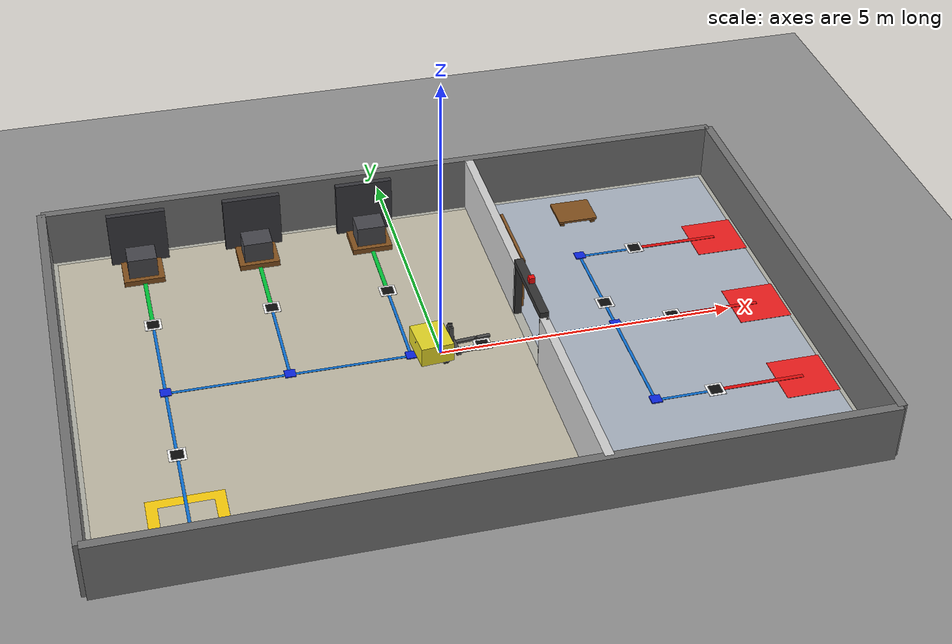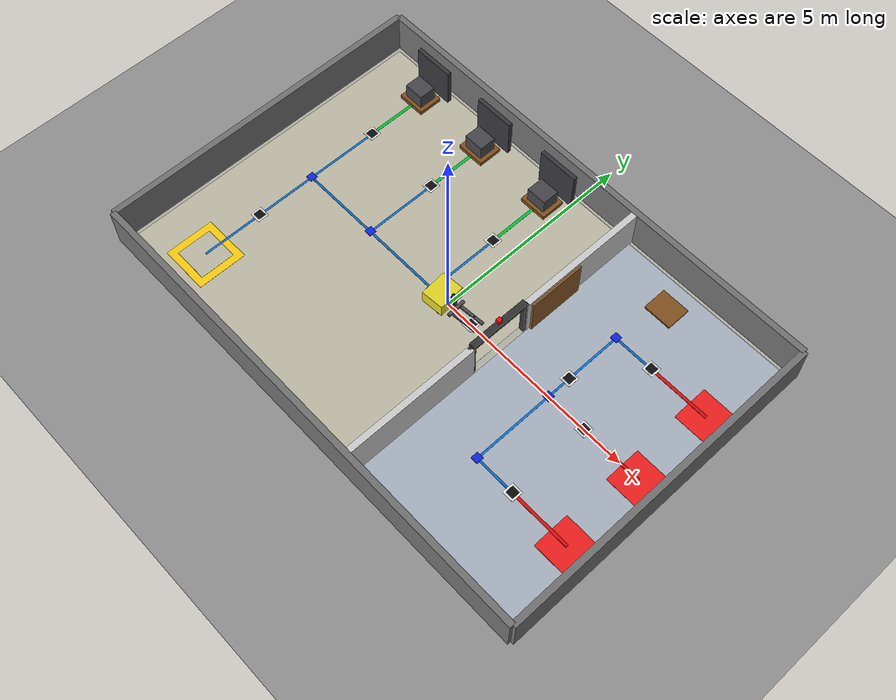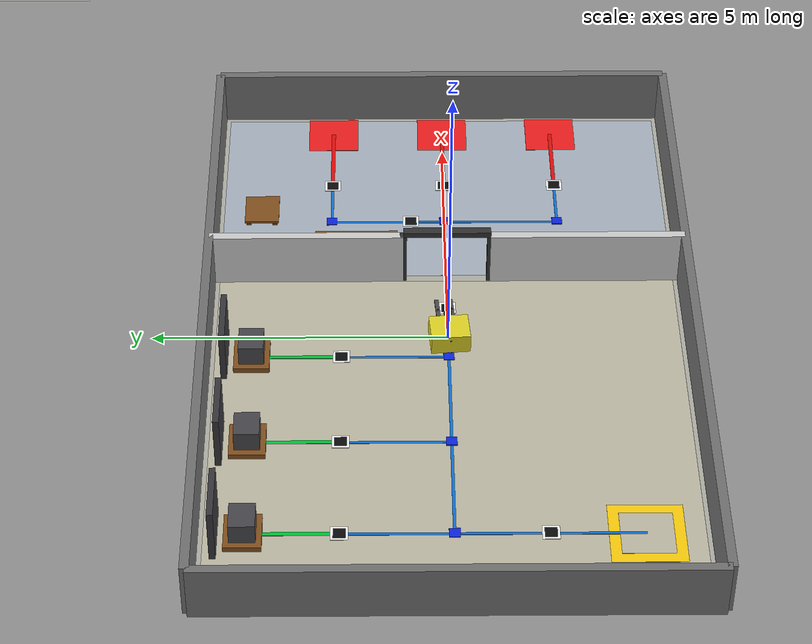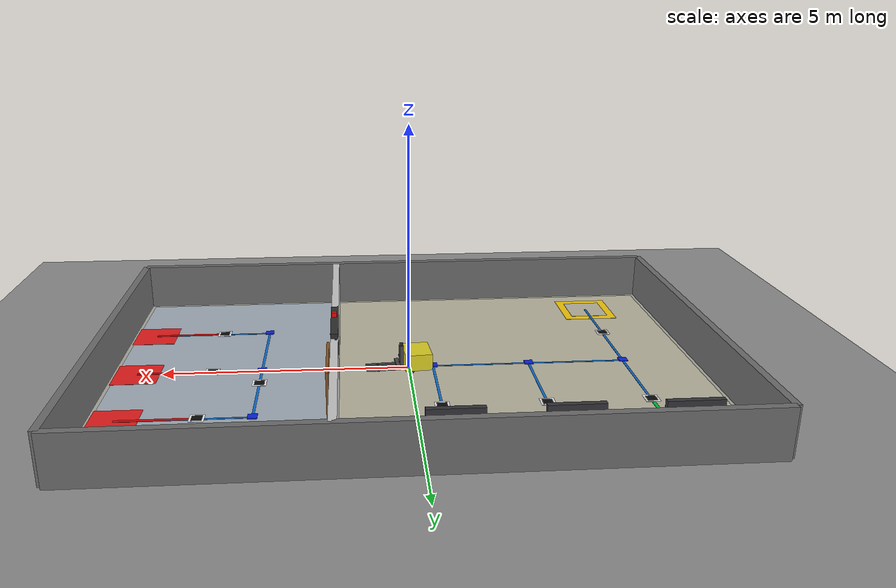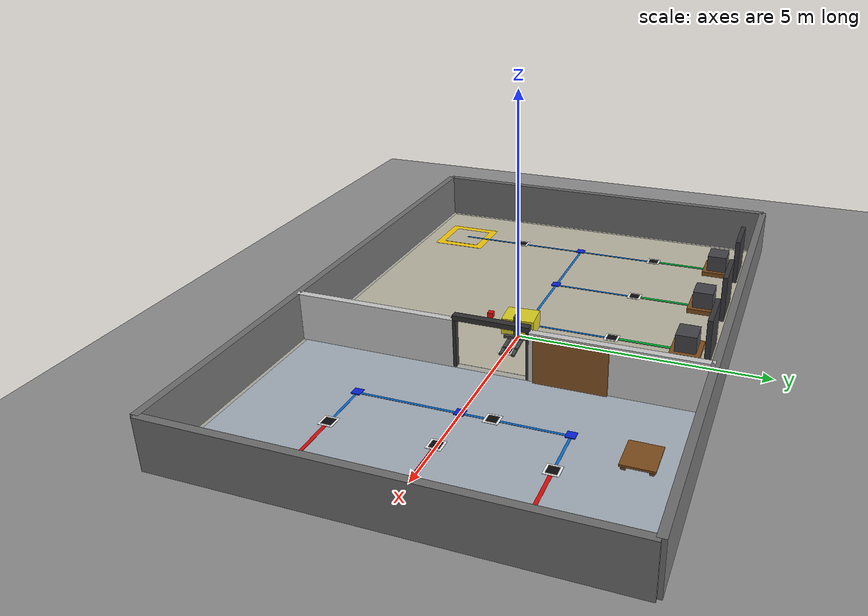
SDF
<sdf version="1.7">
 <world name="teknofest_arena">
  <plugin name="gazebo_ros_properties" filename="libgazebo_ros_properties.so">
   <ros><namespace>/gazebo</namespace></ros>
  </plugin>
  <gravity>0 0 -9.8</gravity>
  <physics name="default_physics" type="ode">
   <max_step_size>0.001</max_step_size>
   <real_time_factor>1</real_time_factor>
   <real_time_update_rate>1000</real_time_update_rate>
  </physics>
  <scene><ambient>0.55 0.55 0.55 1</ambient><background>0.78 0.8 0.82 1</background><shadows>1</shadows></scene>
  <light name="sun" type="directional">
   <pose>0 0 10 0 -0 0</pose>
   <diffuse>0.85 0.85 0.85 1</diffuse>
   <specular>0.2 0.2 0.2 1</specular>
   <attenuation>
    <range>1000</range>
    <constant>0.9</constant>
    <linear>0.01</linear>
    <quadratic>0.001</quadratic>
   </attenuation>
   <direction>-0.45 0.15 -0.88</direction>
   <spot><inner_angle>0</inner_angle><outer_angle>0</outer_angle><falloff>0</falloff></spot>
  </light>
  <light name="overhead_warehouse" type="point">
   <pose>-2.5 0 6 0 -0 0</pose>
   <diffuse>0.65 0.65 0.65 1</diffuse>
   <specular>0.1 0.1 0.1 1</specular>
   <attenuation>
    <range>20</range>
    <constant>0.5</constant>
    <linear>0.01</linear>
    <quadratic>0.001</quadratic>
   </attenuation>
   <direction>0 0 -1</direction>
   <spot><inner_angle>0</inner_angle><outer_angle>0</outer_angle><falloff>0</falloff></spot>
  </light>
  <light name="overhead_production" type="point">
   <pose>4 0 6 0 -0 0</pose>
   <diffuse>0.65 0.65 0.65 1</diffuse>
   <specular>0.1 0.1 0.1 1</specular>
   <attenuation>
    <range>20</range>
    <constant>0.5</constant>
    <linear>0.01</linear>
    <quadratic>0.001</quadratic>
   </attenuation>
   <direction>0 0 -1</direction>
   <spot><inner_angle>0</inner_angle><outer_angle>0</outer_angle><falloff>0</falloff></spot>
  </light>
  <model name="ground_plane">
   <static>1</static>
   <link name="link">
    <collision name="collision">
     <geometry><plane><normal>0 0 1</normal><size>100 100</size></plane></geometry>
     <surface><friction><ode><mu>100</mu><mu2>100</mu2></ode></friction></surface>
    </collision>
    <visual name="visual">
     <cast_shadows>0</cast_shadows>
     <geometry><plane><normal>0 0 1</normal><size>100 100</size></plane></geometry>
     <material><ambient>0.58 0.58 0.58 1</ambient><diffuse>0.58 0.58 0.58 1</diffuse></material>
    </visual>
   </link>
  </model>
  <model name="teknofest_arena_static">
   <static>1</static>
   <link name="arena_floor">
    <pose>0 0 0.005 0 -0 0</pose>
    <visual name="visual">
     <geometry><box><size>12 8 0.01</size></box></geometry>
     <material><ambient>0.7 0.7 0.66 1</ambient><diffuse>0.7 0.7 0.66 1</diffuse></material>
    </visual>
   </link>
   <link name="zone_warehouse">
    <pose>-2.25 0 0.009 0 -0 0</pose>
    <visual name="visual">
     <geometry><box><size>7.35 7.85 0.004</size></box></geometry>
     <material><ambient>0.76 0.74 0.66 1</ambient><diffuse>0.76 0.74 0.66 1</diffuse></material>
    </visual>
   </link>
   <link name="zone_production">
    <pose>3.75 0 0.009 0 -0 0</pose>
    <visual name="visual">
     <geometry><box><size>4.35 7.85 0.004</size></box></geometry>
     <material><ambient>0.67 0.71 0.76 1</ambient><diffuse>0.67 0.71 0.76 1</diffuse></material>
    </visual>
   </link>
   <link name="wall_north">
    <pose>0 4.075 0.5 0 -0 0</pose>
    <collision name="col"><geometry><box><size>12.15 0.15 1</size></box></geometry></collision>
    <visual name="vis">
     <geometry><box><size>12.15 0.15 1</size></box></geometry>
     <material><ambient>0.45 0.45 0.45 1</ambient><diffuse>0.45 0.45 0.45 1</diffuse></material>
    </visual>
   </link>
   <link name="wall_south">
    <pose>0 -4.075 0.5 0 -0 0</pose>
    <collision name="col"><geometry><box><size>12.15 0.15 1</size></box></geometry></collision>
    <visual name="vis">
     <geometry><box><size>12.15 0.15 1</size></box></geometry>
     <material><ambient>0.45 0.45 0.45 1</ambient><diffuse>0.45 0.45 0.45 1</diffuse></material>
    </visual>
   </link>
   <link name="wall_west">
    <pose>-6.075 0 0.5 0 -0 0</pose>
    <collision name="col"><geometry><box><size>0.15 8.15 1</size></box></geometry></collision>
    <visual name="vis">
     <geometry><box><size>0.15 8.15 1</size></box></geometry>
     <material><ambient>0.45 0.45 0.45 1</ambient><diffuse>0.45 0.45 0.45 1</diffuse></material>
    </visual>
   </link>
   <link name="wall_east">
    <pose>6.075 0 0.5 0 -0 0</pose>
    <collision name="col"><geometry><box><size>0.15 8.15 1</size></box></geometry></collision>
    <visual name="vis">
     <geometry><box><size>0.15 8.15 1</size></box></geometry>
     <material><ambient>0.45 0.45 0.45 1</ambient><diffuse>0.45 0.45 0.45 1</diffuse></material>
    </visual>
   </link>
   <link name="partition_upper">
    <pose>1.5 2.41 0.5 0 -0 0</pose>
    <collision name="col"><geometry><box><size>0.15 3.325 1</size></box></geometry></collision>
    <visual name="vis">
     <geometry><box><size>0.15 3.325 1</size></box></geometry>
     <material><ambient>0.82 0.82 0.82 1</ambient><diffuse>0.82 0.82 0.82 1</diffuse></material>
    </visual>
   </link>
   <link name="partition_lower">
    <pose>1.5 -2.41 0.5 0 -0 0</pose>
    <collision name="col"><geometry><box><size>0.15 3.325 1</size></box></geometry></collision>
    <visual name="vis">
     <geometry><box><size>0.15 3.325 1</size></box></geometry>
     <material><ambient>0.82 0.82 0.82 1</ambient><diffuse>0.82 0.82 0.82 1</diffuse></material>
    </visual>
   </link>
   <link name="gate_header">
    <pose>1.5 0 1.05 0 -0 0</pose>
    <collision name="col"><geometry><box><size>0.15 1.5 0.1</size></box></geometry></collision>
    <visual name="vis">
     <geometry><box><size>0.15 1.5 0.1</size></box></geometry>
     <material><ambient>0.2 0.2 0.2 1</ambient><diffuse>0.2 0.2 0.2 1</diffuse></material>
    </visual>
   </link>
   <link name="gate_post_north">
    <pose>1.5 0.75 0.5 0 -0 0</pose>
    <collision name="col"><geometry><box><size>0.12 0.12 1</size></box></geometry></collision>
    <visual name="vis">
     <geometry><box><size>0.12 0.12 1</size></box></geometry>
     <material><ambient>0.2 0.2 0.2 1</ambient><diffuse>0.2 0.2 0.2 1</diffuse></material>
    </visual>
   </link>
   <link name="gate_post_south">
    <pose>1.5 -0.75 0.5 0 -0 0</pose>
    <collision name="col"><geometry><box><size>0.12 0.12 1</size></box></geometry></collision>
    <visual name="vis">
     <geometry><box><size>0.12 0.12 1</size></box></geometry>
     <material><ambient>0.2 0.2 0.2 1</ambient><diffuse>0.2 0.2 0.2 1</diffuse></material>
    </visual>
   </link>
   <link name="gate_plc_light">
    <pose>1.5 0 1.22 0 -0 0</pose>
    <visual name="vis">
     <geometry><box><size>0.1 0.1 0.1</size></box></geometry>
     <material><ambient>0.95 0.05 0.05 1</ambient><diffuse>0.95 0.05 0.05 1</diffuse></material>
    </visual>
   </link>
   <link name="gate_door_panel">
    <pose>1.62 1.55 0.5 0 -0 0</pose>
    <collision name="col"><geometry><box><size>0.05 1.4 0.95</size></box></geometry></collision>
    <visual name="vis">
     <geometry><box><size>0.05 1.4 0.95</size></box></geometry>
     <material><ambient>0.55 0.35 0.15 1</ambient><diffuse>0.55 0.35 0.15 1</diffuse></material>
    </visual>
   </link>
   <link name="start_area_outer">
    <pose>-4.5 -3 0.012 0 -0 0</pose>
    <visual name="vis">
     <geometry><box><size>1.2 1.2 0.006</size></box></geometry>
     <material><ambient>1 0.82 0.05 1</ambient><diffuse>1 0.82 0.05 1</diffuse></material>
    </visual>
   </link>
   <link name="start_area_inner">
    <pose>-4.5 -3 0.016 0 -0 0</pose>
    <visual name="vis">
     <geometry><box><size>0.85 0.85 0.006</size></box></geometry>
     <material><ambient>0.76 0.74 0.66 1</ambient><diffuse>0.76 0.74 0.66 1</diffuse></material>
    </visual>
   </link>
   <link name="route_start_to_d1">
    <pose>-4.5 -1.5 0.02 0 -0 1.5708</pose>
    <visual name="vis">
     <geometry><box><size>3 0.05 0.006</size></box></geometry>
     <material><ambient>0.05 0.45 0.85 1</ambient><diffuse>0.05 0.45 0.85 1</diffuse></material>
    </visual>
   </link>
   <link name="route_d1_d2">
    <pose>-3.5 0 0.02 0 -0 0</pose>
    <visual name="vis">
     <geometry><box><size>2 0.05 0.006</size></box></geometry>
     <material><ambient>0.05 0.45 0.85 1</ambient><diffuse>0.05 0.45 0.85 1</diffuse></material>
    </visual>
   </link>
   <link name="route_d2_d3">
    <pose>-1.5 0 0.02 0 -0 0</pose>
    <visual name="vis">
     <geometry><box><size>2 0.05 0.006</size></box></geometry>
     <material><ambient>0.05 0.45 0.85 1</ambient><diffuse>0.05 0.45 0.85 1</diffuse></material>
    </visual>
   </link>
   <link name="route_d3_to_gate">
    <pose>0.5 0 0.02 0 -0 0</pose>
    <visual name="vis">
     <geometry><box><size>2 0.05 0.006</size></box></geometry>
     <material><ambient>0.05 0.45 0.85 1</ambient><diffuse>0.05 0.45 0.85 1</diffuse></material>
    </visual>
   </link>
   <link name="route_gate_to_d4">
    <pose>2.25 0 0.02 0 -0 0</pose>
    <visual name="vis">
     <geometry><box><size>1.5 0.05 0.006</size></box></geometry>
     <material><ambient>0.05 0.45 0.85 1</ambient><diffuse>0.05 0.45 0.85 1</diffuse></material>
    </visual>
   </link>
   <link name="route_d4_to_d5">
    <pose>3 1 0.02 0 -0 1.5708</pose>
    <visual name="vis">
     <geometry><box><size>2 0.05 0.006</size></box></geometry>
     <material><ambient>0.05 0.45 0.85 1</ambient><diffuse>0.05 0.45 0.85 1</diffuse></material>
    </visual>
   </link>
   <link name="route_d4_to_d6">
    <pose>3 -1 0.02 0 -0 1.5708</pose>
    <visual name="vis">
     <geometry><box><size>2 0.05 0.006</size></box></geometry>
     <material><ambient>0.05 0.45 0.85 1</ambient><diffuse>0.05 0.45 0.85 1</diffuse></material>
    </visual>
   </link>
   <link name="route_d5_to_b1">
    <pose>4.25 2 0.02 0 -0 0</pose>
    <visual name="vis">
     <geometry><box><size>2.5 0.05 0.006</size></box></geometry>
     <material><ambient>0.05 0.45 0.85 1</ambient><diffuse>0.05 0.45 0.85 1</diffuse></material>
    </visual>
   </link>
   <link name="route_d4_to_b2">
    <pose>4.25 0 0.02 0 -0 0</pose>
    <visual name="vis">
     <geometry><box><size>2.5 0.05 0.006</size></box></geometry>
     <material><ambient>0.05 0.45 0.85 1</ambient><diffuse>0.05 0.45 0.85 1</diffuse></material>
    </visual>
   </link>
   <link name="route_d6_to_b3">
    <pose>4.25 -2 0.02 0 -0 0</pose>
    <visual name="vis">
     <geometry><box><size>2.5 0.05 0.006</size></box></geometry>
     <material><ambient>0.05 0.45 0.85 1</ambient><diffuse>0.05 0.45 0.85 1</diffuse></material>
    </visual>
   </link>
   <link name="route_d1_to_a1">
    <pose>-4.5 1.65 0.02 0 -0 1.5708</pose>
    <visual name="vis">
     <geometry><box><size>3.3 0.05 0.006</size></box></geometry>
     <material><ambient>0.05 0.45 0.85 1</ambient><diffuse>0.05 0.45 0.85 1</diffuse></material>
    </visual>
   </link>
   <link name="route_d2_to_a2">
    <pose>-2.5 1.65 0.02 0 -0 1.5708</pose>
    <visual name="vis">
     <geometry><box><size>3.3 0.05 0.006</size></box></geometry>
     <material><ambient>0.05 0.45 0.85 1</ambient><diffuse>0.05 0.45 0.85 1</diffuse></material>
    </visual>
   </link>
   <link name="route_d3_to_a3">
    <pose>-0.5 1.65 0.02 0 -0 1.5708</pose>
    <visual name="vis">
     <geometry><box><size>3.3 0.05 0.006</size></box></geometry>
     <material><ambient>0.05 0.45 0.85 1</ambient><diffuse>0.05 0.45 0.85 1</diffuse></material>
    </visual>
   </link>
   <link name="line_follow_a1_green">
    <pose>-4.5 2.55 0.03 0 -0 1.5708</pose>
    <visual name="vis">
     <geometry><box><size>1.5 0.07 0.008</size></box></geometry>
     <material><ambient>0 0.78 0.22 1</ambient><diffuse>0 0.78 0.22 1</diffuse></material>
    </visual>
   </link>
   <link name="line_follow_a2_green">
    <pose>-2.5 2.55 0.03 0 -0 1.5708</pose>
    <visual name="vis">
     <geometry><box><size>1.5 0.07 0.008</size></box></geometry>
     <material><ambient>0 0.78 0.22 1</ambient><diffuse>0 0.78 0.22 1</diffuse></material>
    </visual>
   </link>
   <link name="line_follow_a3_green">
    <pose>-0.5 2.55 0.03 0 -0 1.5708</pose>
    <visual name="vis">
     <geometry><box><size>1.5 0.07 0.008</size></box></geometry>
     <material><ambient>0 0.78 0.22 1</ambient><diffuse>0 0.78 0.22 1</diffuse></material>
    </visual>
   </link>
   <link name="line_follow_b1_red">
    <pose>4.75 2 0.03 0 -0 0</pose>
    <visual name="vis">
     <geometry><box><size>1.5 0.07 0.008</size></box></geometry>
     <material><ambient>0.9 0.05 0.05 1</ambient><diffuse>0.9 0.05 0.05 1</diffuse></material>
    </visual>
   </link>
   <link name="line_follow_b2_red">
    <pose>4.75 0 0.03 0 -0 0</pose>
    <visual name="vis">
     <geometry><box><size>1.5 0.07 0.008</size></box></geometry>
     <material><ambient>0.9 0.05 0.05 1</ambient><diffuse>0.9 0.05 0.05 1</diffuse></material>
    </visual>
   </link>
   <link name="line_follow_b3_red">
    <pose>4.75 -2 0.03 0 -0 0</pose>
    <visual name="vis">
     <geometry><box><size>1.5 0.07 0.008</size></box></geometry>
     <material><ambient>0.9 0.05 0.05 1</ambient><diffuse>0.9 0.05 0.05 1</diffuse></material>
    </visual>
   </link>
   <link name="B1_delivery_zone">
    <pose>5.5 2 0.018 0 -0 0</pose>
    <visual name="vis">
     <geometry><box><size>0.9 0.9 0.006</size></box></geometry>
     <material><ambient>0.95 0.12 0.12 1</ambient><diffuse>0.95 0.12 0.12 1</diffuse></material>
    </visual>
   </link>
   <link name="B2_delivery_zone">
    <pose>5.5 0 0.018 0 -0 0</pose>
    <visual name="vis">
     <geometry><box><size>0.9 0.9 0.006</size></box></geometry>
     <material><ambient>0.95 0.12 0.12 1</ambient><diffuse>0.95 0.12 0.12 1</diffuse></material>
    </visual>
   </link>
   <link name="B3_delivery_zone">
    <pose>5.5 -2 0.018 0 -0 0</pose>
    <visual name="vis">
     <geometry><box><size>0.9 0.9 0.006</size></box></geometry>
     <material><ambient>0.95 0.12 0.12 1</ambient><diffuse>0.95 0.12 0.12 1</diffuse></material>
    </visual>
   </link>
   <link name="D1_node">
    <pose>-4.5 0 0.04 0 -0 0</pose>
    <visual name="vis">
     <geometry><box><size>0.18 0.18 0.02</size></box></geometry>
     <material><ambient>0.05 0.15 0.9 1</ambient><diffuse>0.05 0.15 0.9 1</diffuse></material>
    </visual>
   </link>
   <link name="D2_node">
    <pose>-2.5 0 0.04 0 -0 0</pose>
    <visual name="vis">
     <geometry><box><size>0.18 0.18 0.02</size></box></geometry>
     <material><ambient>0.05 0.15 0.9 1</ambient><diffuse>0.05 0.15 0.9 1</diffuse></material>
    </visual>
   </link>
   <link name="D3_node">
    <pose>-0.5 0 0.04 0 -0 0</pose>
    <visual name="vis">
     <geometry><box><size>0.18 0.18 0.02</size></box></geometry>
     <material><ambient>0.05 0.15 0.9 1</ambient><diffuse>0.05 0.15 0.9 1</diffuse></material>
    </visual>
   </link>
   <link name="D4_node">
    <pose>3 0 0.04 0 -0 0</pose>
    <visual name="vis">
     <geometry><box><size>0.18 0.18 0.02</size></box></geometry>
     <material><ambient>0.05 0.15 0.9 1</ambient><diffuse>0.05 0.15 0.9 1</diffuse></material>
    </visual>
   </link>
   <link name="D5_node">
    <pose>3 2 0.04 0 -0 0</pose>
    <visual name="vis">
     <geometry><box><size>0.18 0.18 0.02</size></box></geometry>
     <material><ambient>0.05 0.15 0.9 1</ambient><diffuse>0.05 0.15 0.9 1</diffuse></material>
    </visual>
   </link>
   <link name="D6_node">
    <pose>3 -2 0.04 0 -0 0</pose>
    <visual name="vis">
     <geometry><box><size>0.18 0.18 0.02</size></box></geometry>
     <material><ambient>0.05 0.15 0.9 1</ambient><diffuse>0.05 0.15 0.9 1</diffuse></material>
    </visual>
   </link>
  </model>
  <model name="A1_pallet_and_load">
   <static>1</static>
   <pose>-4.5 3.3 0 0 -0 0</pose>
   <link name="link">
    <collision name="pallet_col">
     <pose>0 0 0.055 0 -0 0</pose>
     <geometry><box><size>0.7 0.6 0.11</size></box></geometry>
    </collision>
    <visual name="pallet_vis">
     <pose>0 0 0.055 0 -0 0</pose>
     <geometry><box><size>0.7 0.6 0.11</size></box></geometry>
     <material><ambient>0.52 0.32 0.12 1</ambient><diffuse>0.52 0.32 0.12 1</diffuse></material>
    </visual>
    <collision name="load_col">
     <pose>0 0 0.29 0 -0 0</pose>
     <geometry><box><size>0.5 0.42 0.36</size></box></geometry>
    </collision>
    <visual name="load_vis">
     <pose>0 0 0.29 0 -0 0</pose>
     <geometry><box><size>0.5 0.42 0.36</size></box></geometry>
     <material><ambient>0.28 0.28 0.3 1</ambient><diffuse>0.28 0.28 0.3 1</diffuse></material>
    </visual>
   </link>
  </model>
  <model name="A2_pallet_and_load">
   <static>1</static>
   <pose>-2.5 3.3 0 0 -0 0</pose>
   <link name="link">
    <collision name="pallet_col">
     <pose>0 0 0.055 0 -0 0</pose>
     <geometry><box><size>0.7 0.6 0.11</size></box></geometry>
    </collision>
    <visual name="pallet_vis">
     <pose>0 0 0.055 0 -0 0</pose>
     <geometry><box><size>0.7 0.6 0.11</size></box></geometry>
     <material><ambient>0.52 0.32 0.12 1</ambient><diffuse>0.52 0.32 0.12 1</diffuse></material>
    </visual>
    <collision name="load_col">
     <pose>0 0 0.29 0 -0 0</pose>
     <geometry><box><size>0.5 0.42 0.36</size></box></geometry>
    </collision>
    <visual name="load_vis">
     <pose>0 0 0.29 0 -0 0</pose>
     <geometry><box><size>0.5 0.42 0.36</size></box></geometry>
     <material><ambient>0.28 0.28 0.3 1</ambient><diffuse>0.28 0.28 0.3 1</diffuse></material>
    </visual>
   </link>
  </model>
  <model name="A3_pallet_and_load">
   <static>1</static>
   <pose>-0.5 3.3 0 0 -0 0</pose>
   <link name="link">
    <collision name="pallet_col">
     <pose>0 0 0.055 0 -0 0</pose>
     <geometry><box><size>0.7 0.6 0.11</size></box></geometry>
    </collision>
    <visual name="pallet_vis">
     <pose>0 0 0.055 0 -0 0</pose>
     <geometry><box><size>0.7 0.6 0.11</size></box></geometry>
     <material><ambient>0.52 0.32 0.12 1</ambient><diffuse>0.52 0.32 0.12 1</diffuse></material>
    </visual>
    <collision name="load_col">
     <pose>0 0 0.29 0 -0 0</pose>
     <geometry><box><size>0.5 0.42 0.36</size></box></geometry>
    </collision>
    <visual name="load_vis">
     <pose>0 0 0.29 0 -0 0</pose>
     <geometry><box><size>0.5 0.42 0.36</size></box></geometry>
     <material><ambient>0.28 0.28 0.3 1</ambient><diffuse>0.28 0.28 0.3 1</diffuse></material>
    </visual>
   </link>
  </model>
  <model name="pickup_station_backstops">
   <static>1</static>
   <link name="A1_bs">
    <pose>-4.5 3.75 0.5 0 -0 0</pose>
    <collision name="col"><geometry><box><size>1 0.1 1</size></box></geometry></collision>
    <visual name="vis">
     <geometry><box><size>1 0.1 1</size></box></geometry>
     <material><ambient>0.22 0.22 0.24 1</ambient><diffuse>0.22 0.22 0.24 1</diffuse></material>
    </visual>
   </link>
   <link name="A2_bs">
    <pose>-2.5 3.75 0.5 0 -0 0</pose>
    <collision name="col"><geometry><box><size>1 0.1 1</size></box></geometry></collision>
    <visual name="vis">
     <geometry><box><size>1 0.1 1</size></box></geometry>
     <material><ambient>0.22 0.22 0.24 1</ambient><diffuse>0.22 0.22 0.24 1</diffuse></material>
    </visual>
   </link>
   <link name="A3_bs">
    <pose>-0.5 3.75 0.5 0 -0 0</pose>
    <collision name="col"><geometry><box><size>1 0.1 1</size></box></geometry></collision>
    <visual name="vis">
     <geometry><box><size>1 0.1 1</size></box></geometry>
     <material><ambient>0.22 0.22 0.24 1</ambient><diffuse>0.22 0.22 0.24 1</diffuse></material>
    </visual>
   </link>
  </model>
  <model name="qr_markers">
   <static>1</static>
   <link name="q1">
    <pose>-4.5 -1.5 0.04 0 -0 0</pose>
    <visual name="base">
     <geometry><box><size>0.28 0.28 0.005</size></box></geometry>
     <material><ambient>1 1 1 1</ambient><diffuse>1 1 1 1</diffuse></material>
    </visual>
    <visual name="pat">
     <pose>0 0 0.004 0 -0 0</pose>
     <geometry><box><size>0.2 0.2 0.004</size></box></geometry>
     <material><ambient>0.05 0.05 0.05 1</ambient><diffuse>0.05 0.05 0.05 1</diffuse></material>
    </visual>
   </link>
   <link name="q2">
    <pose>-4.5 1.8 0.04 0 -0 0</pose>
    <visual name="base">
     <geometry><box><size>0.28 0.28 0.005</size></box></geometry>
     <material><ambient>1 1 1 1</ambient><diffuse>1 1 1 1</diffuse></material>
    </visual>
    <visual name="pat">
     <pose>0 0 0.004 0 -0 0</pose>
     <geometry><box><size>0.2 0.2 0.004</size></box></geometry>
     <material><ambient>0.05 0.05 0.05 1</ambient><diffuse>0.05 0.05 0.05 1</diffuse></material>
    </visual>
   </link>
   <link name="q3">
    <pose>-2.5 1.8 0.04 0 -0 0</pose>
    <visual name="base">
     <geometry><box><size>0.28 0.28 0.005</size></box></geometry>
     <material><ambient>1 1 1 1</ambient><diffuse>1 1 1 1</diffuse></material>
    </visual>
    <visual name="pat">
     <pose>0 0 0.004 0 -0 0</pose>
     <geometry><box><size>0.2 0.2 0.004</size></box></geometry>
     <material><ambient>0.05 0.05 0.05 1</ambient><diffuse>0.05 0.05 0.05 1</diffuse></material>
    </visual>
   </link>
   <link name="q4">
    <pose>-0.5 1.8 0.04 0 -0 0</pose>
    <visual name="base">
     <geometry><box><size>0.28 0.28 0.005</size></box></geometry>
     <material><ambient>1 1 1 1</ambient><diffuse>1 1 1 1</diffuse></material>
    </visual>
    <visual name="pat">
     <pose>0 0 0.004 0 -0 0</pose>
     <geometry><box><size>0.2 0.2 0.004</size></box></geometry>
     <material><ambient>0.05 0.05 0.05 1</ambient><diffuse>0.05 0.05 0.05 1</diffuse></material>
    </visual>
   </link>
   <link name="q5">
    <pose>0.7 0 0.04 0 -0 0</pose>
    <visual name="base">
     <geometry><box><size>0.28 0.28 0.005</size></box></geometry>
     <material><ambient>1 1 1 1</ambient><diffuse>1 1 1 1</diffuse></material>
    </visual>
    <visual name="pat">
     <pose>0 0 0.004 0 -0 0</pose>
     <geometry><box><size>0.2 0.2 0.004</size></box></geometry>
     <material><ambient>0.05 0.05 0.05 1</ambient><diffuse>0.05 0.05 0.05 1</diffuse></material>
    </visual>
   </link>
   <link name="q6">
    <pose>3 0.6 0.04 0 -0 0</pose>
    <visual name="base">
     <geometry><box><size>0.28 0.28 0.005</size></box></geometry>
     <material><ambient>1 1 1 1</ambient><diffuse>1 1 1 1</diffuse></material>
    </visual>
    <visual name="pat">
     <pose>0 0 0.004 0 -0 0</pose>
     <geometry><box><size>0.2 0.2 0.004</size></box></geometry>
     <material><ambient>0.05 0.05 0.05 1</ambient><diffuse>0.05 0.05 0.05 1</diffuse></material>
    </visual>
   </link>
   <link name="q7">
    <pose>4 -2 0.04 0 -0 0</pose>
    <visual name="base">
     <geometry><box><size>0.28 0.28 0.005</size></box></geometry>
     <material><ambient>1 1 1 1</ambient><diffuse>1 1 1 1</diffuse></material>
    </visual>
    <visual name="pat">
     <pose>0 0 0.004 0 -0 0</pose>
     <geometry><box><size>0.2 0.2 0.004</size></box></geometry>
     <material><ambient>0.05 0.05 0.05 1</ambient><diffuse>0.05 0.05 0.05 1</diffuse></material>
    </visual>
   </link>
   <link name="q8">
    <pose>4 0 0.04 0 -0 0</pose>
    <visual name="base">
     <geometry><box><size>0.28 0.28 0.005</size></box></geometry>
     <material><ambient>1 1 1 1</ambient><diffuse>1 1 1 1</diffuse></material>
    </visual>
    <visual name="pat">
     <pose>0 0 0.004 0 -0 0</pose>
     <geometry><box><size>0.2 0.2 0.004</size></box></geometry>
     <material><ambient>0.05 0.05 0.05 1</ambient><diffuse>0.05 0.05 0.05 1</diffuse></material>
    </visual>
   </link>
   <link name="q9">
    <pose>4 2 0.04 0 -0 0</pose>
    <visual name="base">
     <geometry><box><size>0.28 0.28 0.005</size></box></geometry>
     <material><ambient>1 1 1 1</ambient><diffuse>1 1 1 1</diffuse></material>
    </visual>
    <visual name="pat">
     <pose>0 0 0.004 0 -0 0</pose>
     <geometry><box><size>0.2 0.2 0.004</size></box></geometry>
     <material><ambient>0.05 0.05 0.05 1</ambient><diffuse>0.05 0.05 0.05 1</diffuse></material>
    </visual>
   </link>
  </model>
  <magnetic_field>6e-06 2.3e-05 -4.2e-05</magnetic_field>
  <atmosphere type="adiabatic"/>
  <audio><device>default</device></audio>
  <spherical_coordinates>
   <surface_model>EARTH_WGS84</surface_model>
   <latitude_deg>0</latitude_deg>
   <longitude_deg>0</longitude_deg>
   <elevation>0</elevation>
   <heading_deg>0</heading_deg>
  </spherical_coordinates>
  <model name="test_pallet">
   <static>0</static>
   <pose>3.26498 3.24766 -4e-06 2.4e-05 -0 0</pose>
   <link name="link">
    <inertial>
     <mass>12</mass>
     <inertia><ixx>0.37</ixx><ixy>0</ixy><ixz>0</ixz><iyy>0.54</iyy><iyz>0</iyz><izz>0.85</izz></inertia>
    </inertial>
    <collision name="platform_col">
     <pose>0 0 0.1 0 -0 0</pose>
     <geometry><box><size>0.7 0.6 0.04</size></box></geometry>
     <surface><friction><ode><mu>0.8</mu><mu2>0.8</mu2></ode></friction></surface>
    </collision>
    <visual name="platform_vis">
     <pose>0 0 0.1 0 -0 0</pose>
     <geometry><box><size>0.7 0.6 0.04</size></box></geometry>
     <material><ambient>0.52 0.32 0.12 1</ambient><diffuse>0.52 0.32 0.12 1</diffuse></material>
    </visual>
    <collision name="leg_fl_col">
     <pose>0.28 0.23 0.04 0 -0 0</pose>
     <geometry><box><size>0.08 0.08 0.08</size></box></geometry>
    </collision>
    <visual name="leg_fl_vis">
     <pose>0.28 0.23 0.04 0 -0 0</pose>
     <geometry><box><size>0.08 0.08 0.08</size></box></geometry>
     <material><ambient>0.45 0.28 0.1 1</ambient><diffuse>0.45 0.28 0.1 1</diffuse></material>
    </visual>
    <collision name="leg_fr_col">
     <pose>0.28 -0.23 0.04 0 -0 0</pose>
     <geometry><box><size>0.08 0.08 0.08</size></box></geometry>
    </collision>
    <visual name="leg_fr_vis">
     <pose>0.28 -0.23 0.04 0 -0 0</pose>
     <geometry><box><size>0.08 0.08 0.08</size></box></geometry>
     <material><ambient>0.45 0.28 0.1 1</ambient><diffuse>0.45 0.28 0.1 1</diffuse></material>
    </visual>
    <collision name="leg_bl_col">
     <pose>-0.28 0.23 0.04 0 -0 0</pose>
     <geometry><box><size>0.08 0.08 0.08</size></box></geometry>
    </collision>
    <visual name="leg_bl_vis">
     <pose>-0.28 0.23 0.04 0 -0 0</pose>
     <geometry><box><size>0.08 0.08 0.08</size></box></geometry>
     <material><ambient>0.45 0.28 0.1 1</ambient><diffuse>0.45 0.28 0.1 1</diffuse></material>
    </visual>
    <collision name="leg_br_col">
     <pose>-0.28 -0.23 0.04 0 -0 0</pose>
     <geometry><box><size>0.08 0.08 0.08</size></box></geometry>
    </collision>
    <visual name="leg_br_vis">
     <pose>-0.28 -0.23 0.04 0 -0 0</pose>
     <geometry><box><size>0.08 0.08 0.08</size></box></geometry>
     <material><ambient>0.45 0.28 0.1 1</ambient><diffuse>0.45 0.28 0.1 1</diffuse></material>
    </visual>
   </link>
  </model>
  <model name="mysimrobot">
   <link name="base_link">
    <inertial>
     <pose>-0.088438 0 0.233497 0 -0 0</pose>
     <mass>18.13</mass>
     <inertia>
      <ixx>0.785428</ixx>
      <ixy>0</ixy>
      <ixz>0.0312682</ixz>
      <iyy>1.16505</iyy>
      <iyz>-4.33681e-19</iyz>
      <izz>1.49138</izz>
     </inertia>
    </inertial>
    <collision name="base_link_fixed_joint_lump__chassis_collision">
     <pose>-0.15 0 0.235 0 -0 0</pose>
     <geometry><box><size>0.55 0.66 0.34</size></box></geometry>
    </collision>
    <collision name="base_link_fixed_joint_lump__mast_collision_1">
     <pose>0.165 0 0.285 0 -0 0</pose>
     <geometry><box><size>0.08 0.12 0.44</size></box></geometry>
    </collision>
    <collision name="base_link_fixed_joint_lump__camera_link_collision_2">
     <pose>0.217 0 0.285 0 0.44 0</pose>
     <geometry><box><size>0.02 0.06 0.025</size></box></geometry>
    </collision>
    <collision name="base_link_fixed_joint_lump__laser_frame_collision_3">
     <pose>0.165 0 0.53 0 -0 0</pose>
     <geometry><cylinder><length>0.04</length><radius>0.04</radius></cylinder></geometry>
    </collision>
    <collision name="base_link_fixed_joint_lump__rear_caster_collision_4">
     <pose>-0.385 0 0.04 0 -0 0</pose>
     <geometry><sphere><radius>0.04</radius></sphere></geometry>
     <surface><friction><ode><mu>0.001</mu><mu2>0.001</mu2></ode></friction></surface>
    </collision>
    <collision name="base_link_fixed_joint_lump__front_left_load_wheel_collision_5">
     <pose>0.65 0.12 0.04 0 -0 0</pose>
     <geometry><sphere><radius>0.04</radius></sphere></geometry>
     <surface><friction><ode><mu>0.001</mu><mu2>0.001</mu2></ode></friction></surface>
    </collision>
    <collision name="base_link_fixed_joint_lump__front_right_load_wheel_collision_6">
     <pose>0.65 -0.12 0.04 0 -0 0</pose>
     <geometry><sphere><radius>0.04</radius></sphere></geometry>
     <surface><friction><ode><mu>0.001</mu><mu2>0.001</mu2></ode></friction></surface>
    </collision>
    <visual name="base_link_fixed_joint_lump__chassis_visual">
     <pose>-0.15 0 0.235 0 -0 0</pose>
     <geometry><box><size>0.55 0.66 0.34</size></box></geometry>
     <material>
      <script><name>Gazebo/Yellow</name><uri>file://media/materials/scripts/gazebo.material</uri></script>
     </material>
    </visual>
    <visual name="base_link_fixed_joint_lump__mast_visual_1">
     <pose>0.165 0 0.285 0 -0 0</pose>
     <geometry><box><size>0.08 0.12 0.44</size></box></geometry>
     <material>
      <script><name>Gazebo/DarkGray</name><uri>file://media/materials/scripts/gazebo.material</uri></script>
     </material>
    </visual>
    <visual name="base_link_fixed_joint_lump__camera_link_visual_2">
     <pose>0.217 0 0.285 0 0.44 0</pose>
     <geometry><box><size>0.02 0.06 0.025</size></box></geometry>
     <material>
      <script><name>Gazebo/DarkGray</name><uri>file://media/materials/scripts/gazebo.material</uri></script>
     </material>
    </visual>
    <visual name="base_link_fixed_joint_lump__front_led_visual_3">
     <pose>0.21 0 0.145 0 -0 0</pose>
     <geometry><sphere><radius>0.015</radius></sphere></geometry>
     <material>
      <script><name>Gazebo/RedGlow</name><uri>file://media/materials/scripts/gazebo.material</uri></script>
     </material>
    </visual>
    <visual name="base_link_fixed_joint_lump__laser_frame_visual_4">
     <pose>0.165 0 0.53 0 -0 0</pose>
     <geometry><cylinder><length>0.04</length><radius>0.04</radius></cylinder></geometry>
     <material>
      <script><name>Gazebo/Black</name><uri>file://media/materials/scripts/gazebo.material</uri></script>
     </material>
    </visual>
    <visual name="base_link_fixed_joint_lump__laser_frame_visual_5">
     <pose>0.165 0 0.49 0 -0 0</pose>
     <geometry><cylinder><length>0.08</length><radius>0.008</radius></cylinder></geometry>
     <material>
      <script><name>Gazebo/Black</name><uri>file://media/materials/scripts/gazebo.material</uri></script>
     </material>
    </visual>
    <visual name="base_link_fixed_joint_lump__rear_caster_visual_6">
     <pose>-0.385 0 0.04 0 -0 0</pose>
     <geometry><sphere><radius>0.04</radius></sphere></geometry>
     <material>
      <script><name>Gazebo/Black</name><uri>file://media/materials/scripts/gazebo.material</uri></script>
     </material>
    </visual>
    <visual name="base_link_fixed_joint_lump__rear_led_visual_7">
     <pose>-0.42 0 0.32 0 -0 0</pose>
     <geometry><sphere><radius>0.015</radius></sphere></geometry>
     <material>
      <script><name>Gazebo/BlueGlow</name><uri>file://media/materials/scripts/gazebo.material</uri></script>
     </material>
    </visual>
    <visual name="base_link_fixed_joint_lump__front_left_load_wheel_visual_8">
     <pose>0.65 0.12 0.04 0 -0 0</pose>
     <geometry><sphere><radius>0.04</radius></sphere></geometry>
     <material>
      <script><name>Gazebo/Black</name><uri>file://media/materials/scripts/gazebo.material</uri></script>
     </material>
    </visual>
    <visual name="base_link_fixed_joint_lump__front_right_load_wheel_visual_9">
     <pose>0.65 -0.12 0.04 0 -0 0</pose>
     <geometry><sphere><radius>0.04</radius></sphere></geometry>
     <material>
      <script><name>Gazebo/Black</name><uri>file://media/materials/scripts/gazebo.material</uri></script>
     </material>
    </visual>
    <sensor name="camera" type="depth">
     <visualize>0</visualize>
     <update_rate>15</update_rate>
     <camera>
      <horizontal_fov>1.089</horizontal_fov>
      <image><format>B8G8R8</format><width>640</width><height>480</height></image>
      <clip><near>0.05</near><far>5</far></clip>
      <noise><type>gaussian</type><mean>0</mean><stddev>0.005</stddev></noise>
     </camera>
     <plugin name="camera_controller" filename="libgazebo_ros_camera.so">
      <frame_name>camera_link_optical</frame_name>
      <min_depth>0.05</min_depth>
      <max_depth>5.0</max_depth>
     </plugin>
     <pose>0.217 0 0.285 0 0.44 0</pose>
    </sensor>
    <sensor name="laser" type="ray">
     <visualize>0</visualize>
     <update_rate>10</update_rate>
     <ray>
      <scan>
       <horizontal>
        <samples>360</samples>
        <min_angle>-3.14159</min_angle>
        <max_angle>3.14159</max_angle>
        <resolution>1</resolution>
       </horizontal>
       <vertical><samples>1</samples><min_angle>0</min_angle><max_angle>0</max_angle></vertical>
      </scan>
      <range><min>0.2</min><max>12</max><resolution>0.01</resolution></range>
      <noise><type>gaussian</type><mean>0</mean><stddev>0.01</stddev></noise>
     </ray>
     <plugin name="laser_controller" filename="libgazebo_ros_ray_sensor.so">
      <ros><argument>~/out:=scan</argument></ros>
      <output_type>sensor_msgs/LaserScan</output_type>
      <frame_name>laser_frame</frame_name>
     </plugin>
     <pose>0.165 0 0.53 0 -0 0</pose>
    </sensor>
   </link>
   <joint name="fork_carriage_joint" type="prismatic">
    <pose relative_to="base_link">0.245 0 0.095 0 -0 0</pose>
    <parent>base_link</parent>
    <child>fork_carriage</child>
    <axis>
     <xyz>0 0 1</xyz>
     <limit><lower>0</lower><upper>0.3</upper><effort>500</effort><velocity>0.3</velocity></limit>
     <dynamics>
      <damping>200</damping>
      <friction>0</friction>
      <spring_reference>0</spring_reference>
      <spring_stiffness>0</spring_stiffness>
     </dynamics>
    </axis>
   </joint>
   <link name="fork_carriage">
    <pose relative_to="fork_carriage_joint">0 0 0 0 -0 0</pose>
    <inertial>
     <pose>0.167742 0 -0.023226 0 -0 0</pose>
     <mass>3.1</mass>
     <inertia>
      <ixx>0.0545869</ixx>
      <ixy>0</ixy>
      <ixz>0.0113226</ixz>
      <iyy>0.141001</iyy>
      <iyz>0</iyz>
      <izz>0.191401</izz>
     </inertia>
    </inertial>
    <collision name="fork_carriage_collision">
     <geometry><box><size>0.08 0.48 0.05</size></box></geometry>
    </collision>
    <collision name="fork_carriage_fixed_joint_lump__left_fork_collision_1">
     <pose>0.325 0.12 -0.045 0 -0 0</pose>
     <geometry><box><size>0.65 0.07 0.04</size></box></geometry>
    </collision>
    <collision name="fork_carriage_fixed_joint_lump__right_fork_collision_2">
     <pose>0.325 -0.12 -0.045 0 -0 0</pose>
     <geometry><box><size>0.65 0.07 0.04</size></box></geometry>
    </collision>
    <visual name="fork_carriage_visual">
     <geometry><box><size>0.08 0.48 0.05</size></box></geometry>
     <material>
      <script><name>Gazebo/DarkGray</name><uri>file://media/materials/scripts/gazebo.material</uri></script>
     </material>
    </visual>
    <visual name="fork_carriage_fixed_joint_lump__left_fork_visual_1">
     <pose>0.325 0.12 -0.045 0 -0 0</pose>
     <geometry><box><size>0.65 0.07 0.04</size></box></geometry>
     <material>
      <script><name>Gazebo/DarkGray</name><uri>file://media/materials/scripts/gazebo.material</uri></script>
     </material>
    </visual>
    <visual name="fork_carriage_fixed_joint_lump__right_fork_visual_2">
     <pose>0.325 -0.12 -0.045 0 -0 0</pose>
     <geometry><box><size>0.65 0.07 0.04</size></box></geometry>
     <material>
      <script><name>Gazebo/DarkGray</name><uri>file://media/materials/scripts/gazebo.material</uri></script>
     </material>
    </visual>
   </link>
   <joint name="left_wheel_joint" type="revolute">
    <pose relative_to="base_link">0 0.28 0.065 -1.5708 0 0</pose>
    <parent>base_link</parent>
    <child>left_wheel</child>
    <axis>
     <xyz>0 0 1</xyz>
     <limit><lower>-1e+16</lower><upper>1e+16</upper></limit>
     <dynamics><spring_reference>0</spring_reference><spring_stiffness>0</spring_stiffness></dynamics>
    </axis>
   </joint>
   <link name="left_wheel">
    <pose relative_to="left_wheel_joint">0 0 0 0 -0 0</pose>
    <inertial>
     <mass>1.5</mass>
     <inertia>
      <ixx>0.0021125</ixx>
      <ixy>0</ixy>
      <ixz>0</ixz>
      <iyy>0.0021125</iyy>
      <iyz>0</iyz>
      <izz>0.00316875</izz>
     </inertia>
    </inertial>
    <collision name="left_wheel_collision">
     <geometry><sphere><radius>0.065</radius></sphere></geometry>
    </collision>
    <visual name="left_wheel_visual">
     <geometry><cylinder><length>0.065</length><radius>0.065</radius></cylinder></geometry>
     <material>
      <script><name>Gazebo/Black</name><uri>file://media/materials/scripts/gazebo.material</uri></script>
     </material>
    </visual>
   </link>
   <joint name="right_wheel_joint" type="revolute">
    <pose relative_to="base_link">0 -0.28 0.065 1.5708 -0 0</pose>
    <parent>base_link</parent>
    <child>right_wheel</child>
    <axis>
     <xyz>0 0 -1</xyz>
     <limit><lower>-1e+16</lower><upper>1e+16</upper></limit>
     <dynamics><spring_reference>0</spring_reference><spring_stiffness>0</spring_stiffness></dynamics>
    </axis>
   </joint>
   <link name="right_wheel">
    <pose relative_to="right_wheel_joint">0 0 0 0 -0 0</pose>
    <inertial>
     <mass>1.5</mass>
     <inertia>
      <ixx>0.0021125</ixx>
      <ixy>0</ixy>
      <ixz>0</ixz>
      <iyy>0.0021125</iyy>
      <iyz>0</iyz>
      <izz>0.00316875</izz>
     </inertia>
    </inertial>
    <collision name="right_wheel_collision">
     <geometry><sphere><radius>0.065</radius></sphere></geometry>
    </collision>
    <visual name="right_wheel_visual">
     <geometry><cylinder><length>0.065</length><radius>0.065</radius></cylinder></geometry>
     <material>
      <script><name>Gazebo/Black</name><uri>file://media/materials/scripts/gazebo.material</uri></script>
     </material>
    </visual>
   </link>
   <plugin name="diff_drive" filename="libgazebo_ros_diff_drive.so">
    <left_joint>left_wheel_joint</left_joint>
    <right_joint>right_wheel_joint</right_joint>
    <wheel_separation>0.56</wheel_separation>
    <wheel_diameter>0.13</wheel_diameter>
    <max_wheel_torque>300</max_wheel_torque>
    <max_wheel_acceleration>5.0</max_wheel_acceleration>
    <odometry_frame>odom</odometry_frame>
    <robot_base_frame>base_link</robot_base_frame>
    <publish_odom>1</publish_odom>
    <publish_odom_tf>1</publish_odom_tf>
    <publish_wheel_tf>1</publish_wheel_tf>
   </plugin>
   <static>0</static>
   <plugin name="fork_joint_state_pub" filename="libgazebo_ros_joint_state_publisher.so">
    <update_rate>30</update_rate>
    <joint_name>fork_carriage_joint</joint_name>
   </plugin>
   <pose>-0.01197 -0.002892 0 -1e-06 -0 0.077021</pose>
  </model>
 </world>
</sdf>
